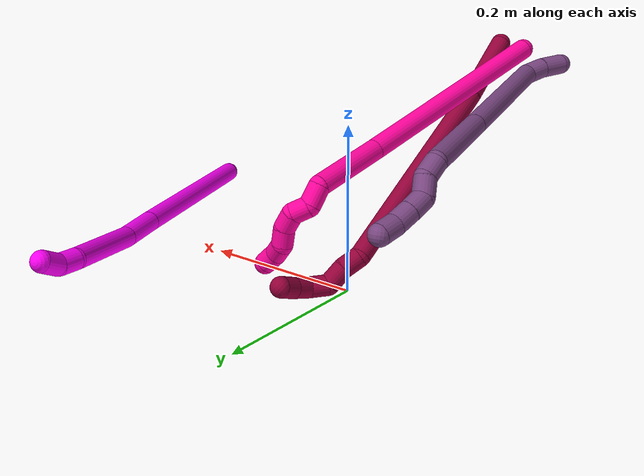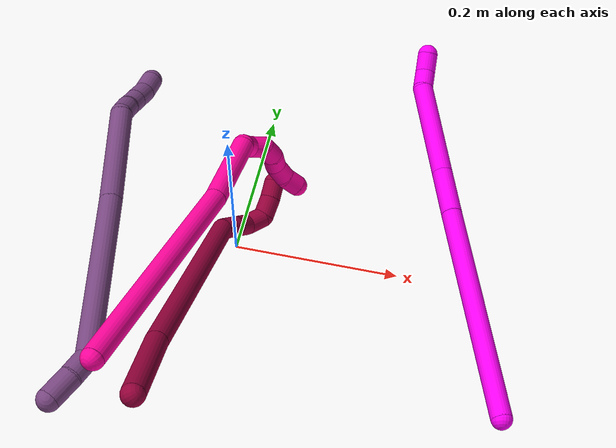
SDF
<sdf version="1.7">
 <world name="default">
  <model name="8">
   <static>0</static>
   <link name="8">
    <collision name="collision-cylinder-e_1_1_4">
     <pose>0.013442 0.047788 -0.010038 -1.77784 0.268617 -0.329884</pose>
     <geometry><cylinder><radius>0.0125</radius><length>0.101295</length></cylinder></geometry>
     <surface>
      <friction><ode><mu>1.16</mu><mu2>1.16</mu2><slip1>0</slip1><slip2>0</slip2></ode></friction>
      <contact><ode><kp>1e+06</kp><kd>1</kd><max_vel>0</max_vel><min_depth>0.001</min_depth></ode></contact>
     </surface>
    </collision>
    <visual name="visual-cylinder-e_1_1_4">
     <pose>0.013442 0.047788 -0.010038 -1.77784 0.268617 -0.329884</pose>
     <geometry><cylinder><radius>0.0125</radius><length>0.101295</length></cylinder></geometry>
     <material><ambient>0.584314 0 0.227451 1</ambient></material>
    </visual>
    <collision name="collision-cylinder-e_2_4_5">
     <pose>0.069556 0.227133 -0.039388 -1.71654 0.310544 -0.358484</pose>
     <geometry><cylinder><radius>0.0125</radius><length>0.279292</length></cylinder></geometry>
     <surface>
      <friction><ode><mu>1.16</mu><mu2>1.16</mu2><slip1>0</slip1><slip2>0</slip2></ode></friction>
      <contact><ode><kp>1e+06</kp><kd>1</kd><max_vel>0</max_vel><min_depth>0.001</min_depth></ode></contact>
     </surface>
    </collision>
    <visual name="visual-cylinder-e_2_4_5">
     <pose>0.069556 0.227133 -0.039388 -1.71654 0.310544 -0.358484</pose>
     <geometry><cylinder><radius>0.0125</radius><length>0.279292</length></cylinder></geometry>
     <material><ambient>0.584314 0 0.227451 1</ambient></material>
    </visual>
    <collision name="collision-cylinder-e_3_5_6">
     <pose>0.120481 0.366825 -0.056554 -1.31302 0.775728 -0.60997</pose>
     <geometry><cylinder><radius>0.0125</radius><length>0.023569</length></cylinder></geometry>
     <surface>
      <friction><ode><mu>1.16</mu><mu2>1.16</mu2><slip1>0</slip1><slip2>0</slip2></ode></friction>
      <contact><ode><kp>1e+06</kp><kd>1</kd><max_vel>0</max_vel><min_depth>0.001</min_depth></ode></contact>
     </surface>
    </collision>
    <visual name="visual-cylinder-e_3_5_6">
     <pose>0.120481 0.366825 -0.056554 -1.31302 0.775728 -0.60997</pose>
     <geometry><cylinder><radius>0.0125</radius><length>0.023569</length></cylinder></geometry>
     <material><ambient>0.584314 0 0.227451 1</ambient></material>
    </visual>
    <collision name="collision-cylinder-e_4_6_7">
     <pose>0.137385 0.384512 -0.054989 -1.63142 0.7351 -0.7767</pose>
     <geometry><cylinder><radius>0.0125</radius><length>0.025802</length></cylinder></geometry>
     <surface>
      <friction><ode><mu>1.16</mu><mu2>1.16</mu2><slip1>0</slip1><slip2>0</slip2></ode></friction>
      <contact><ode><kp>1e+06</kp><kd>1</kd><max_vel>0</max_vel><min_depth>0.001</min_depth></ode></contact>
     </surface>
    </collision>
    <visual name="visual-cylinder-e_4_6_7">
     <pose>0.137385 0.384512 -0.054989 -1.63142 0.7351 -0.7767</pose>
     <geometry><cylinder><radius>0.0125</radius><length>0.025802</length></cylinder></geometry>
     <material><ambient>0.584314 0 0.227451 1</ambient></material>
    </visual>
    <collision name="collision-cylinder-e_5_7_8">
     <pose>0.151414 0.401434 -0.048184 -0.784397 0.47585 -0.199956</pose>
     <geometry><cylinder><radius>0.0125</radius><length>0.023473</length></cylinder></geometry>
     <surface>
      <friction><ode><mu>1.16</mu><mu2>1.16</mu2><slip1>0</slip1><slip2>0</slip2></ode></friction>
      <contact><ode><kp>1e+06</kp><kd>1</kd><max_vel>0</max_vel><min_depth>0.001</min_depth></ode></contact>
     </surface>
    </collision>
    <visual name="visual-cylinder-e_5_7_8">
     <pose>0.151414 0.401434 -0.048184 -0.784397 0.47585 -0.199956</pose>
     <geometry><cylinder><radius>0.0125</radius><length>0.023473</length></cylinder></geometry>
     <material><ambient>0.584314 0 0.227451 1</ambient></material>
    </visual>
    <collision name="collision-cylinder-e_6_8_9">
     <pose>0.154438 0.419457 -0.034804 -1.05816 -0.190067 0.11135</pose>
     <geometry><cylinder><radius>0.0125</radius><length>0.024898</length></cylinder></geometry>
     <surface>
      <friction><ode><mu>1.16</mu><mu2>1.16</mu2><slip1>0</slip1><slip2>0</slip2></ode></friction>
      <contact><ode><kp>1e+06</kp><kd>1</kd><max_vel>0</max_vel><min_depth>0.001</min_depth></ode></contact>
     </surface>
    </collision>
    <visual name="visual-cylinder-e_6_8_9">
     <pose>0.154438 0.419457 -0.034804 -1.05816 -0.190067 0.11135</pose>
     <geometry><cylinder><radius>0.0125</radius><length>0.024898</length></cylinder></geometry>
     <material><ambient>0.584314 0 0.227451 1</ambient></material>
    </visual>
    <collision name="collision-cylinder-e_7_9_2">
     <pose>0.148711 0.439074 -0.023743 -1.05651 -0.316756 0.185876</pose>
     <geometry><cylinder><radius>0.0125</radius><length>0.021671</length></cylinder></geometry>
     <surface>
      <friction><ode><mu>1.16</mu><mu2>1.16</mu2><slip1>0</slip1><slip2>0</slip2></ode></friction>
      <contact><ode><kp>1e+06</kp><kd>1</kd><max_vel>0</max_vel><min_depth>0.001</min_depth></ode></contact>
     </surface>
    </collision>
    <visual name="visual-cylinder-e_7_9_2">
     <pose>0.148711 0.439074 -0.023743 -1.05651 -0.316756 0.185876</pose>
     <geometry><cylinder><radius>0.0125</radius><length>0.021671</length></cylinder></geometry>
     <material><ambient>0.584314 0 0.227451 1</ambient></material>
    </visual>
    <collision name="collision-sphere-2">
     <pose>0.145336 0.448039 -0.018678 0 -0 0</pose>
     <geometry><sphere><radius>0.0125</radius></sphere></geometry>
     <surface>
      <friction><ode><mu>1.16</mu><mu2>1.16</mu2><slip1>0</slip1><slip2>0</slip2></ode></friction>
      <contact><ode><kp>1e+06</kp><kd>1</kd><max_vel>0</max_vel><min_depth>0.001</min_depth></ode></contact>
     </surface>
    </collision>
    <visual name="visual-sphere-2">
     <pose>0.145336 0.448039 -0.018678 0 -0 0</pose>
     <geometry><sphere><radius>0.0125</radius></sphere></geometry>
     <material><ambient>0.584314 0 0.227451 1</ambient></material>
    </visual>
    <collision name="collision-sphere-9">
     <pose>0.152086 0.43011 -0.028808 0 -0 0</pose>
     <geometry><sphere><radius>0.0125</radius></sphere></geometry>
     <surface>
      <friction><ode><mu>1.16</mu><mu2>1.16</mu2><slip1>0</slip1><slip2>0</slip2></ode></friction>
      <contact><ode><kp>1e+06</kp><kd>1</kd><max_vel>0</max_vel><min_depth>0.001</min_depth></ode></contact>
     </surface>
    </collision>
    <visual name="visual-sphere-9">
     <pose>0.152086 0.43011 -0.028808 0 -0 0</pose>
     <geometry><sphere><radius>0.0125</radius></sphere></geometry>
     <material><ambient>0.584314 0 0.227451 1</ambient></material>
    </visual>
    <collision name="collision-sphere-4">
     <pose>0.026883 0.095577 -0.020077 0 -0 0</pose>
     <geometry><sphere><radius>0.0125</radius></sphere></geometry>
     <surface>
      <friction><ode><mu>1.16</mu><mu2>1.16</mu2><slip1>0</slip1><slip2>0</slip2></ode></friction>
      <contact><ode><kp>1e+06</kp><kd>1</kd><max_vel>0</max_vel><min_depth>0.001</min_depth></ode></contact>
     </surface>
    </collision>
    <visual name="visual-sphere-4">
     <pose>0.026883 0.095577 -0.020077 0 -0 0</pose>
     <geometry><sphere><radius>0.0125</radius></sphere></geometry>
     <material><ambient>0.584314 0 0.227451 1</ambient></material>
    </visual>
    <collision name="collision-sphere-1">
     <geometry><sphere><radius>0.0125</radius></sphere></geometry>
     <surface>
      <friction><ode><mu>1.16</mu><mu2>1.16</mu2><slip1>0</slip1><slip2>0</slip2></ode></friction>
      <contact><ode><kp>1e+06</kp><kd>1</kd><max_vel>0</max_vel><min_depth>0.001</min_depth></ode></contact>
     </surface>
    </collision>
    <visual name="visual-sphere-1">
     <geometry><sphere><radius>0.0125</radius></sphere></geometry>
     <material><ambient>0.584314 0 0.227451 1</ambient></material>
    </visual>
    <collision name="collision-sphere-8">
     <pose>0.15679 0.408804 -0.0408 0 -0 0</pose>
     <geometry><sphere><radius>0.0125</radius></sphere></geometry>
     <surface>
      <friction><ode><mu>1.16</mu><mu2>1.16</mu2><slip1>0</slip1><slip2>0</slip2></ode></friction>
      <contact><ode><kp>1e+06</kp><kd>1</kd><max_vel>0</max_vel><min_depth>0.001</min_depth></ode></contact>
     </surface>
    </collision>
    <visual name="visual-sphere-8">
     <pose>0.15679 0.408804 -0.0408 0 -0 0</pose>
     <geometry><sphere><radius>0.0125</radius></sphere></geometry>
     <material><ambient>0.584314 0 0.227451 1</ambient></material>
    </visual>
    <collision name="collision-sphere-5">
     <pose>0.112229 0.35869 -0.058698 0 -0 0</pose>
     <geometry><sphere><radius>0.0125</radius></sphere></geometry>
     <surface>
      <friction><ode><mu>1.16</mu><mu2>1.16</mu2><slip1>0</slip1><slip2>0</slip2></ode></friction>
      <contact><ode><kp>1e+06</kp><kd>1</kd><max_vel>0</max_vel><min_depth>0.001</min_depth></ode></contact>
     </surface>
    </collision>
    <visual name="visual-sphere-5">
     <pose>0.112229 0.35869 -0.058698 0 -0 0</pose>
     <geometry><sphere><radius>0.0125</radius></sphere></geometry>
     <material><ambient>0.584314 0 0.227451 1</ambient></material>
    </visual>
    <collision name="collision-sphere-6">
     <pose>0.128733 0.37496 -0.054409 0 -0 0</pose>
     <geometry><sphere><radius>0.0125</radius></sphere></geometry>
     <surface>
      <friction><ode><mu>1.16</mu><mu2>1.16</mu2><slip1>0</slip1><slip2>0</slip2></ode></friction>
      <contact><ode><kp>1e+06</kp><kd>1</kd><max_vel>0</max_vel><min_depth>0.001</min_depth></ode></contact>
     </surface>
    </collision>
    <visual name="visual-sphere-6">
     <pose>0.128733 0.37496 -0.054409 0 -0 0</pose>
     <geometry><sphere><radius>0.0125</radius></sphere></geometry>
     <material><ambient>0.584314 0 0.227451 1</ambient></material>
    </visual>
    <collision name="collision-sphere-7">
     <pose>0.146037 0.394064 -0.055568 0 -0 0</pose>
     <geometry><sphere><radius>0.0125</radius></sphere></geometry>
     <surface>
      <friction><ode><mu>1.16</mu><mu2>1.16</mu2><slip1>0</slip1><slip2>0</slip2></ode></friction>
      <contact><ode><kp>1e+06</kp><kd>1</kd><max_vel>0</max_vel><min_depth>0.001</min_depth></ode></contact>
     </surface>
    </collision>
    <visual name="visual-sphere-7">
     <pose>0.146037 0.394064 -0.055568 0 -0 0</pose>
     <geometry><sphere><radius>0.0125</radius></sphere></geometry>
     <material><ambient>0.584314 0 0.227451 1</ambient></material>
    </visual>
    <inertial>
     <pose>0.075589 0.232451 -0.034563 0 -0 0</pose>
     <mass>0.5</mass>
     <inertia>
      <ixx>0.00109</ixx>
      <ixy>0</ixy>
      <ixz>0</ixz>
      <iyy>-0.000664</iyy>
      <iyz>0</iyz>
      <izz>-0.0024</izz>
     </inertia>
    </inertial>
   </link>
   <pose>-0.001215 -0.335023 0.23669 -0.30136 0.839419 -0.105852</pose>
  </model>
  <model name="10">
   <static>0</static>
   <link name="10">
    <collision name="collision-cylinder-e_1_1_4">
     <pose>0.008922 0.033724 0.128792 -0.256097 0.066914 -0.008619</pose>
     <geometry><cylinder><radius>0.0125</radius><length>0.266865</length></cylinder></geometry>
     <surface>
      <friction><ode><mu>1.16</mu><mu2>1.16</mu2><slip1>0</slip1><slip2>0</slip2></ode></friction>
      <contact><ode><kp>1e+06</kp><kd>1</kd><max_vel>0</max_vel><min_depth>0.001</min_depth></ode></contact>
     </surface>
    </collision>
    <visual name="visual-cylinder-e_1_1_4">
     <pose>0.008922 0.033724 0.128792 -0.256097 0.066914 -0.008619</pose>
     <geometry><cylinder><radius>0.0125</radius><length>0.266865</length></cylinder></geometry>
     <material><ambient>1 0 0.964706 1</ambient></material>
    </visual>
    <collision name="collision-cylinder-e_2_4_5">
     <pose>0.020992 0.075377 0.286814 -0.264921 0.103587 -0.013814</pose>
     <geometry><cylinder><radius>0.0125</radius><length>0.060899</length></cylinder></geometry>
     <surface>
      <friction><ode><mu>1.16</mu><mu2>1.16</mu2><slip1>0</slip1><slip2>0</slip2></ode></friction>
      <contact><ode><kp>1e+06</kp><kd>1</kd><max_vel>0</max_vel><min_depth>0.001</min_depth></ode></contact>
     </surface>
    </collision>
    <visual name="visual-cylinder-e_2_4_5">
     <pose>0.020992 0.075377 0.286814 -0.264921 0.103587 -0.013814</pose>
     <geometry><cylinder><radius>0.0125</radius><length>0.060899</length></cylinder></geometry>
     <material><ambient>1 0 0.964706 1</ambient></material>
    </visual>
    <collision name="collision-cylinder-e_3_5_6">
     <pose>0.023453 0.095409 0.376221 -0.198454 -0.011201 0.001115</pose>
     <geometry><cylinder><radius>0.0125</radius><length>0.122774</length></cylinder></geometry>
     <surface>
      <friction><ode><mu>1.16</mu><mu2>1.16</mu2><slip1>0</slip1><slip2>0</slip2></ode></friction>
      <contact><ode><kp>1e+06</kp><kd>1</kd><max_vel>0</max_vel><min_depth>0.001</min_depth></ode></contact>
     </surface>
    </collision>
    <visual name="visual-cylinder-e_3_5_6">
     <pose>0.023453 0.095409 0.376221 -0.198454 -0.011201 0.001115</pose>
     <geometry><cylinder><radius>0.0125</radius><length>0.122774</length></cylinder></geometry>
     <material><ambient>1 0 0.964706 1</ambient></material>
    </visual>
    <collision name="collision-cylinder-e_4_6_7">
     <pose>0.026162 0.107859 0.448126 -0.029689 0.281795 -0.004211</pose>
     <geometry><cylinder><radius>0.0125</radius><length>0.024426</length></cylinder></geometry>
     <surface>
      <friction><ode><mu>1.16</mu><mu2>1.16</mu2><slip1>0</slip1><slip2>0</slip2></ode></friction>
      <contact><ode><kp>1e+06</kp><kd>1</kd><max_vel>0</max_vel><min_depth>0.001</min_depth></ode></contact>
     </surface>
    </collision>
    <visual name="visual-cylinder-e_4_6_7">
     <pose>0.026162 0.107859 0.448126 -0.029689 0.281795 -0.004211</pose>
     <geometry><cylinder><radius>0.0125</radius><length>0.024426</length></cylinder></geometry>
     <material><ambient>1 0 0.964706 1</ambient></material>
    </visual>
    <collision name="collision-cylinder-e_5_7_2">
     <pose>0.028914 0.105219 0.471991 0.241394 -0.051477 -0.006245</pose>
     <geometry><cylinder><radius>0.0125</radius><length>0.025036</length></cylinder></geometry>
     <surface>
      <friction><ode><mu>1.16</mu><mu2>1.16</mu2><slip1>0</slip1><slip2>0</slip2></ode></friction>
      <contact><ode><kp>1e+06</kp><kd>1</kd><max_vel>0</max_vel><min_depth>0.001</min_depth></ode></contact>
     </surface>
    </collision>
    <visual name="visual-cylinder-e_5_7_2">
     <pose>0.028914 0.105219 0.471991 0.241394 -0.051477 -0.006245</pose>
     <geometry><cylinder><radius>0.0125</radius><length>0.025036</length></cylinder></geometry>
     <material><ambient>1 0 0.964706 1</ambient></material>
    </visual>
    <collision name="collision-sphere-2">
     <pose>0.02827 0.102231 0.48413 0 -0 0</pose>
     <geometry><sphere><radius>0.0125</radius></sphere></geometry>
     <surface>
      <friction><ode><mu>1.16</mu><mu2>1.16</mu2><slip1>0</slip1><slip2>0</slip2></ode></friction>
      <contact><ode><kp>1e+06</kp><kd>1</kd><max_vel>0</max_vel><min_depth>0.001</min_depth></ode></contact>
     </surface>
    </collision>
    <visual name="visual-sphere-2">
     <pose>0.02827 0.102231 0.48413 0 -0 0</pose>
     <geometry><sphere><radius>0.0125</radius></sphere></geometry>
     <material><ambient>1 0 0.964706 1</ambient></material>
    </visual>
    <collision name="collision-sphere-7">
     <pose>0.029558 0.108208 0.459852 0 -0 0</pose>
     <geometry><sphere><radius>0.0125</radius></sphere></geometry>
     <surface>
      <friction><ode><mu>1.16</mu><mu2>1.16</mu2><slip1>0</slip1><slip2>0</slip2></ode></friction>
      <contact><ode><kp>1e+06</kp><kd>1</kd><max_vel>0</max_vel><min_depth>0.001</min_depth></ode></contact>
     </surface>
    </collision>
    <visual name="visual-sphere-7">
     <pose>0.029558 0.108208 0.459852 0 -0 0</pose>
     <geometry><sphere><radius>0.0125</radius></sphere></geometry>
     <material><ambient>1 0 0.964706 1</ambient></material>
    </visual>
    <collision name="collision-sphere-6">
     <pose>0.022766 0.107511 0.4364 0 -0 0</pose>
     <geometry><sphere><radius>0.0125</radius></sphere></geometry>
     <surface>
      <friction><ode><mu>1.16</mu><mu2>1.16</mu2><slip1>0</slip1><slip2>0</slip2></ode></friction>
      <contact><ode><kp>1e+06</kp><kd>1</kd><max_vel>0</max_vel><min_depth>0.001</min_depth></ode></contact>
     </surface>
    </collision>
    <visual name="visual-sphere-6">
     <pose>0.022766 0.107511 0.4364 0 -0 0</pose>
     <geometry><sphere><radius>0.0125</radius></sphere></geometry>
     <material><ambient>1 0 0.964706 1</ambient></material>
    </visual>
    <collision name="collision-sphere-5">
     <pose>0.024141 0.083307 0.316043 0 -0 0</pose>
     <geometry><sphere><radius>0.0125</radius></sphere></geometry>
     <surface>
      <friction><ode><mu>1.16</mu><mu2>1.16</mu2><slip1>0</slip1><slip2>0</slip2></ode></friction>
      <contact><ode><kp>1e+06</kp><kd>1</kd><max_vel>0</max_vel><min_depth>0.001</min_depth></ode></contact>
     </surface>
    </collision>
    <visual name="visual-sphere-5">
     <pose>0.024141 0.083307 0.316043 0 -0 0</pose>
     <geometry><sphere><radius>0.0125</radius></sphere></geometry>
     <material><ambient>1 0 0.964706 1</ambient></material>
    </visual>
    <collision name="collision-sphere-1">
     <geometry><sphere><radius>0.0125</radius></sphere></geometry>
     <surface>
      <friction><ode><mu>1.16</mu><mu2>1.16</mu2><slip1>0</slip1><slip2>0</slip2></ode></friction>
      <contact><ode><kp>1e+06</kp><kd>1</kd><max_vel>0</max_vel><min_depth>0.001</min_depth></ode></contact>
     </surface>
    </collision>
    <visual name="visual-sphere-1">
     <geometry><sphere><radius>0.0125</radius></sphere></geometry>
     <material><ambient>1 0 0.964706 1</ambient></material>
    </visual>
    <collision name="collision-sphere-4">
     <pose>0.017844 0.067447 0.257584 0 -0 0</pose>
     <geometry><sphere><radius>0.0125</radius></sphere></geometry>
     <surface>
      <friction><ode><mu>1.16</mu><mu2>1.16</mu2><slip1>0</slip1><slip2>0</slip2></ode></friction>
      <contact><ode><kp>1e+06</kp><kd>1</kd><max_vel>0</max_vel><min_depth>0.001</min_depth></ode></contact>
     </surface>
    </collision>
    <visual name="visual-sphere-4">
     <pose>0.017844 0.067447 0.257584 0 -0 0</pose>
     <geometry><sphere><radius>0.0125</radius></sphere></geometry>
     <material><ambient>1 0 0.964706 1</ambient></material>
    </visual>
    <inertial>
     <pose>0.015803 0.061145 0.241579 0 -0 0</pose>
     <mass>0.5</mass>
     <inertia>
      <ixx>0.001763</ixx>
      <ixy>0</ixy>
      <ixz>0</ixz>
      <iyy>0.001717</iyy>
      <iyz>0</iyz>
      <izz>-0.000509</izz>
     </inertia>
    </inertial>
   </link>
   <pose>0.347645 -0.178002 0.028558 -1.1289 0.826154 0.548828</pose>
  </model>
  <model name="18">
   <static>0</static>
   <link name="18">
    <collision name="collision-cylinder-e_1_1_4">
     <pose>-0.02318 -0.007745 -0.136136 3.08477 -0.168383 -2.4919</pose>
     <geometry><cylinder><radius>0.0125</radius><length>0.276624</length></cylinder></geometry>
     <surface>
      <friction><ode><mu>1.16</mu><mu2>1.16</mu2><slip1>0</slip1><slip2>0</slip2></ode></friction>
      <contact><ode><kp>1e+06</kp><kd>1</kd><max_vel>0</max_vel><min_depth>0.001</min_depth></ode></contact>
     </surface>
    </collision>
    <visual name="visual-cylinder-e_1_1_4">
     <pose>-0.02318 -0.007745 -0.136136 3.08477 -0.168383 -2.4919</pose>
     <geometry><cylinder><radius>0.0125</radius><length>0.276624</length></cylinder></geometry>
     <material><ambient>1 0.007843 0.615686 1</ambient></material>
    </visual>
    <collision name="collision-cylinder-e_2_4_5">
     <pose>-0.058614 -0.013743 -0.318927 -3.10418 -0.256709 2.85369</pose>
     <geometry><cylinder><radius>0.0125</radius><length>0.096538</length></cylinder></geometry>
     <surface>
      <friction><ode><mu>1.16</mu><mu2>1.16</mu2><slip1>0</slip1><slip2>0</slip2></ode></friction>
      <contact><ode><kp>1e+06</kp><kd>1</kd><max_vel>0</max_vel><min_depth>0.001</min_depth></ode></contact>
     </surface>
    </collision>
    <visual name="visual-cylinder-e_2_4_5">
     <pose>-0.058614 -0.013743 -0.318927 -3.10418 -0.256709 2.85369</pose>
     <geometry><cylinder><radius>0.0125</radius><length>0.096538</length></cylinder></geometry>
     <material><ambient>1 0.007843 0.615686 1</ambient></material>
    </visual>
    <collision name="collision-cylinder-e_3_5_6">
     <pose>-0.073063 -0.020143 -0.374842 2.42013 -0.175998 -0.45949</pose>
     <geometry><cylinder><radius>0.0125</radius><length>0.025055</length></cylinder></geometry>
     <surface>
      <friction><ode><mu>1.16</mu><mu2>1.16</mu2><slip1>0</slip1><slip2>0</slip2></ode></friction>
      <contact><ode><kp>1e+06</kp><kd>1</kd><max_vel>0</max_vel><min_depth>0.001</min_depth></ode></contact>
     </surface>
    </collision>
    <visual name="visual-cylinder-e_3_5_6">
     <pose>-0.073063 -0.020143 -0.374842 2.42013 -0.175998 -0.45949</pose>
     <geometry><cylinder><radius>0.0125</radius><length>0.025055</length></cylinder></geometry>
     <material><ambient>1 0.007843 0.615686 1</ambient></material>
    </visual>
    <collision name="collision-cylinder-e_4_6_7">
     <pose>-0.070238 -0.031792 -0.392368 2.74074 0.509781 1.81712</pose>
     <geometry><cylinder><radius>0.0125</radius><length>0.020568</length></cylinder></geometry>
     <surface>
      <friction><ode><mu>1.16</mu><mu2>1.16</mu2><slip1>0</slip1><slip2>0</slip2></ode></friction>
      <contact><ode><kp>1e+06</kp><kd>1</kd><max_vel>0</max_vel><min_depth>0.001</min_depth></ode></contact>
     </surface>
    </collision>
    <visual name="visual-cylinder-e_4_6_7">
     <pose>-0.070238 -0.031792 -0.392368 2.74074 0.509781 1.81712</pose>
     <geometry><cylinder><radius>0.0125</radius><length>0.020568</length></cylinder></geometry>
     <material><ambient>1 0.007843 0.615686 1</ambient></material>
    </visual>
    <collision name="collision-cylinder-e_5_7_8">
     <pose>-0.062224 -0.044028 -0.40536 2.06695 0.292971 0.48551</pose>
     <geometry><cylinder><radius>0.0125</radius><length>0.020746</length></cylinder></geometry>
     <surface>
      <friction><ode><mu>1.16</mu><mu2>1.16</mu2><slip1>0</slip1><slip2>0</slip2></ode></friction>
      <contact><ode><kp>1e+06</kp><kd>1</kd><max_vel>0</max_vel><min_depth>0.001</min_depth></ode></contact>
     </surface>
    </collision>
    <visual name="visual-cylinder-e_5_7_8">
     <pose>-0.062224 -0.044028 -0.40536 2.06695 0.292971 0.48551</pose>
     <geometry><cylinder><radius>0.0125</radius><length>0.020746</length></cylinder></geometry>
     <material><ambient>1 0.007843 0.615686 1</ambient></material>
    </visual>
    <collision name="collision-cylinder-e_6_8_9">
     <pose>-0.05935 -0.062534 -0.41308 1.86799 -0.011865 -0.016043</pose>
     <geometry><cylinder><radius>0.0125</radius><length>0.020442</length></cylinder></geometry>
     <surface>
      <friction><ode><mu>1.16</mu><mu2>1.16</mu2><slip1>0</slip1><slip2>0</slip2></ode></friction>
      <contact><ode><kp>1e+06</kp><kd>1</kd><max_vel>0</max_vel><min_depth>0.001</min_depth></ode></contact>
     </surface>
    </collision>
    <visual name="visual-cylinder-e_6_8_9">
     <pose>-0.05935 -0.062534 -0.41308 1.86799 -0.011865 -0.016043</pose>
     <geometry><cylinder><radius>0.0125</radius><length>0.020442</length></cylinder></geometry>
     <material><ambient>1 0.007843 0.615686 1</ambient></material>
    </visual>
    <collision name="collision-cylinder-e_7_9_10">
     <pose>-0.054032 -0.08046 -0.4181 1.81439 0.574501 0.722499</pose>
     <geometry><cylinder><radius>0.0125</radius><length>0.020018</length></cylinder></geometry>
     <surface>
      <friction><ode><mu>1.16</mu><mu2>1.16</mu2><slip1>0</slip1><slip2>0</slip2></ode></friction>
      <contact><ode><kp>1e+06</kp><kd>1</kd><max_vel>0</max_vel><min_depth>0.001</min_depth></ode></contact>
     </surface>
    </collision>
    <visual name="visual-cylinder-e_7_9_10">
     <pose>-0.054032 -0.08046 -0.4181 1.81439 0.574501 0.722499</pose>
     <geometry><cylinder><radius>0.0125</radius><length>0.020018</length></cylinder></geometry>
     <material><ambient>1 0.007843 0.615686 1</ambient></material>
    </visual>
    <collision name="collision-cylinder-e_8_10_2">
     <pose>-0.043234 -0.095638 -0.424821 2.15997 0.565248 0.995485</pose>
     <geometry><cylinder><radius>0.0125</radius><length>0.020009</length></cylinder></geometry>
     <surface>
      <friction><ode><mu>1.16</mu><mu2>1.16</mu2><slip1>0</slip1><slip2>0</slip2></ode></friction>
      <contact><ode><kp>1e+06</kp><kd>1</kd><max_vel>0</max_vel><min_depth>0.001</min_depth></ode></contact>
     </surface>
    </collision>
    <visual name="visual-cylinder-e_8_10_2">
     <pose>-0.043234 -0.095638 -0.424821 2.15997 0.565248 0.995485</pose>
     <geometry><cylinder><radius>0.0125</radius><length>0.020009</length></cylinder></geometry>
     <material><ambient>1 0.007843 0.615686 1</ambient></material>
    </visual>
    <collision name="collision-sphere-2">
     <pose>-0.037876 -0.102662 -0.429515 0 -0 0</pose>
     <geometry><sphere><radius>0.0125</radius></sphere></geometry>
     <surface>
      <friction><ode><mu>1.16</mu><mu2>1.16</mu2><slip1>0</slip1><slip2>0</slip2></ode></friction>
      <contact><ode><kp>1e+06</kp><kd>1</kd><max_vel>0</max_vel><min_depth>0.001</min_depth></ode></contact>
     </surface>
    </collision>
    <visual name="visual-sphere-2">
     <pose>-0.037876 -0.102662 -0.429515 0 -0 0</pose>
     <geometry><sphere><radius>0.0125</radius></sphere></geometry>
     <material><ambient>1 0.007843 0.615686 1</ambient></material>
    </visual>
    <collision name="collision-sphere-10">
     <pose>-0.048593 -0.088614 -0.420126 0 -0 0</pose>
     <geometry><sphere><radius>0.0125</radius></sphere></geometry>
     <surface>
      <friction><ode><mu>1.16</mu><mu2>1.16</mu2><slip1>0</slip1><slip2>0</slip2></ode></friction>
      <contact><ode><kp>1e+06</kp><kd>1</kd><max_vel>0</max_vel><min_depth>0.001</min_depth></ode></contact>
     </surface>
    </collision>
    <visual name="visual-sphere-10">
     <pose>-0.048593 -0.088614 -0.420126 0 -0 0</pose>
     <geometry><sphere><radius>0.0125</radius></sphere></geometry>
     <material><ambient>1 0.007843 0.615686 1</ambient></material>
    </visual>
    <collision name="collision-sphere-9">
     <pose>-0.059471 -0.072306 -0.416073 0 -0 0</pose>
     <geometry><sphere><radius>0.0125</radius></sphere></geometry>
     <surface>
      <friction><ode><mu>1.16</mu><mu2>1.16</mu2><slip1>0</slip1><slip2>0</slip2></ode></friction>
      <contact><ode><kp>1e+06</kp><kd>1</kd><max_vel>0</max_vel><min_depth>0.001</min_depth></ode></contact>
     </surface>
    </collision>
    <visual name="visual-sphere-9">
     <pose>-0.059471 -0.072306 -0.416073 0 -0 0</pose>
     <geometry><sphere><radius>0.0125</radius></sphere></geometry>
     <material><ambient>1 0.007843 0.615686 1</ambient></material>
    </visual>
    <collision name="collision-sphere-4">
     <pose>-0.046359 -0.015489 -0.272272 0 -0 0</pose>
     <geometry><sphere><radius>0.0125</radius></sphere></geometry>
     <surface>
      <friction><ode><mu>1.16</mu><mu2>1.16</mu2><slip1>0</slip1><slip2>0</slip2></ode></friction>
      <contact><ode><kp>1e+06</kp><kd>1</kd><max_vel>0</max_vel><min_depth>0.001</min_depth></ode></contact>
     </surface>
    </collision>
    <visual name="visual-sphere-4">
     <pose>-0.046359 -0.015489 -0.272272 0 -0 0</pose>
     <geometry><sphere><radius>0.0125</radius></sphere></geometry>
     <material><ambient>1 0.007843 0.615686 1</ambient></material>
    </visual>
    <collision name="collision-sphere-1">
     <geometry><sphere><radius>0.0125</radius></sphere></geometry>
     <surface>
      <friction><ode><mu>1.16</mu><mu2>1.16</mu2><slip1>0</slip1><slip2>0</slip2></ode></friction>
      <contact><ode><kp>1e+06</kp><kd>1</kd><max_vel>0</max_vel><min_depth>0.001</min_depth></ode></contact>
     </surface>
    </collision>
    <visual name="visual-sphere-1">
     <geometry><sphere><radius>0.0125</radius></sphere></geometry>
     <material><ambient>1 0.007843 0.615686 1</ambient></material>
    </visual>
    <collision name="collision-sphere-8">
     <pose>-0.059229 -0.052762 -0.410088 0 -0 0</pose>
     <geometry><sphere><radius>0.0125</radius></sphere></geometry>
     <surface>
      <friction><ode><mu>1.16</mu><mu2>1.16</mu2><slip1>0</slip1><slip2>0</slip2></ode></friction>
      <contact><ode><kp>1e+06</kp><kd>1</kd><max_vel>0</max_vel><min_depth>0.001</min_depth></ode></contact>
     </surface>
    </collision>
    <visual name="visual-sphere-8">
     <pose>-0.059229 -0.052762 -0.410088 0 -0 0</pose>
     <geometry><sphere><radius>0.0125</radius></sphere></geometry>
     <material><ambient>1 0.007843 0.615686 1</ambient></material>
    </visual>
    <collision name="collision-sphere-5">
     <pose>-0.07087 -0.011996 -0.365581 0 -0 0</pose>
     <geometry><sphere><radius>0.0125</radius></sphere></geometry>
     <surface>
      <friction><ode><mu>1.16</mu><mu2>1.16</mu2><slip1>0</slip1><slip2>0</slip2></ode></friction>
      <contact><ode><kp>1e+06</kp><kd>1</kd><max_vel>0</max_vel><min_depth>0.001</min_depth></ode></contact>
     </surface>
    </collision>
    <visual name="visual-sphere-5">
     <pose>-0.07087 -0.011996 -0.365581 0 -0 0</pose>
     <geometry><sphere><radius>0.0125</radius></sphere></geometry>
     <material><ambient>1 0.007843 0.615686 1</ambient></material>
    </visual>
    <collision name="collision-sphere-6">
     <pose>-0.075257 -0.02829 -0.384103 0 -0 0</pose>
     <geometry><sphere><radius>0.0125</radius></sphere></geometry>
     <surface>
      <friction><ode><mu>1.16</mu><mu2>1.16</mu2><slip1>0</slip1><slip2>0</slip2></ode></friction>
      <contact><ode><kp>1e+06</kp><kd>1</kd><max_vel>0</max_vel><min_depth>0.001</min_depth></ode></contact>
     </surface>
    </collision>
    <visual name="visual-sphere-6">
     <pose>-0.075257 -0.02829 -0.384103 0 -0 0</pose>
     <geometry><sphere><radius>0.0125</radius></sphere></geometry>
     <material><ambient>1 0.007843 0.615686 1</ambient></material>
    </visual>
    <collision name="collision-sphere-7">
     <pose>-0.06522 -0.035295 -0.400632 0 -0 0</pose>
     <geometry><sphere><radius>0.0125</radius></sphere></geometry>
     <surface>
      <friction><ode><mu>1.16</mu><mu2>1.16</mu2><slip1>0</slip1><slip2>0</slip2></ode></friction>
      <contact><ode><kp>1e+06</kp><kd>1</kd><max_vel>0</max_vel><min_depth>0.001</min_depth></ode></contact>
     </surface>
    </collision>
    <visual name="visual-sphere-7">
     <pose>-0.06522 -0.035295 -0.400632 0 -0 0</pose>
     <geometry><sphere><radius>0.0125</radius></sphere></geometry>
     <material><ambient>1 0.007843 0.615686 1</ambient></material>
    </visual>
    <inertial>
     <pose>-0.039593 -0.020687 -0.239265 0 -0 0</pose>
     <mass>0.5</mass>
     <inertia>
      <ixx>-0.002497</ixx>
      <ixy>0</ixy>
      <ixz>0</ixz>
      <iyy>0.000453</iyy>
      <iyz>0</iyz>
      <izz>0.000385</izz>
     </inertia>
    </inertial>
   </link>
   <pose>-0.048639 -0.307684 0.239744 1.35638 -0.126336 -0.310083</pose>
  </model>
  <model name="20">
   <static>0</static>
   <link name="20">
    <collision name="collision-cylinder-e_1_1_4">
     <pose>0.006357 0.013382 -0.004912 -1.9226 0.419438 -0.591832</pose>
     <geometry><cylinder><radius>0.0125</radius><length>0.031217</length></cylinder></geometry>
     <surface>
      <friction><ode><mu>1.16</mu><mu2>1.16</mu2><slip1>0</slip1><slip2>0</slip2></ode></friction>
      <contact><ode><kp>1e+06</kp><kd>1</kd><max_vel>0</max_vel><min_depth>0.001</min_depth></ode></contact>
     </surface>
    </collision>
    <visual name="visual-cylinder-e_1_1_4">
     <pose>0.006357 0.013382 -0.004912 -1.9226 0.419438 -0.591832</pose>
     <geometry><cylinder><radius>0.0125</radius><length>0.031217</length></cylinder></geometry>
     <material><ambient>0.478431 0.278431 0.509804 1</ambient></material>
    </visual>
    <collision name="collision-cylinder-e_2_4_5">
     <pose>0.016839 0.037946 -0.015618 -2.04882 0.316629 -0.513455</pose>
     <geometry><cylinder><radius>0.0125</radius><length>0.026503</length></cylinder></geometry>
     <surface>
      <friction><ode><mu>1.16</mu><mu2>1.16</mu2><slip1>0</slip1><slip2>0</slip2></ode></friction>
      <contact><ode><kp>1e+06</kp><kd>1</kd><max_vel>0</max_vel><min_depth>0.001</min_depth></ode></contact>
     </surface>
    </collision>
    <visual name="visual-cylinder-e_2_4_5">
     <pose>0.016839 0.037946 -0.015618 -2.04882 0.316629 -0.513455</pose>
     <geometry><cylinder><radius>0.0125</radius><length>0.026503</length></cylinder></geometry>
     <material><ambient>0.478431 0.278431 0.509804 1</ambient></material>
    </visual>
    <collision name="collision-cylinder-e_3_5_6">
     <pose>0.003051 0.140186 -0.059559 -1.96752 -0.179494 0.268901</pose>
     <geometry><cylinder><radius>0.0125</radius><length>0.200678</length></cylinder></geometry>
     <surface>
      <friction><ode><mu>1.16</mu><mu2>1.16</mu2><slip1>0</slip1><slip2>0</slip2></ode></friction>
      <contact><ode><kp>1e+06</kp><kd>1</kd><max_vel>0</max_vel><min_depth>0.001</min_depth></ode></contact>
     </surface>
    </collision>
    <visual name="visual-cylinder-e_3_5_6">
     <pose>0.003051 0.140186 -0.059559 -1.96752 -0.179494 0.268901</pose>
     <geometry><cylinder><radius>0.0125</radius><length>0.200678</length></cylinder></geometry>
     <material><ambient>0.478431 0.278431 0.509804 1</ambient></material>
    </visual>
    <collision name="collision-cylinder-e_4_6_7">
     <pose>-0.027228 0.289271 -0.120165 -1.94007 -0.196182 0.285262</pose>
     <geometry><cylinder><radius>0.0125</radius><length>0.126876</length></cylinder></geometry>
     <surface>
      <friction><ode><mu>1.16</mu><mu2>1.16</mu2><slip1>0</slip1><slip2>0</slip2></ode></friction>
      <contact><ode><kp>1e+06</kp><kd>1</kd><max_vel>0</max_vel><min_depth>0.001</min_depth></ode></contact>
     </surface>
    </collision>
    <visual name="visual-cylinder-e_4_6_7">
     <pose>-0.027228 0.289271 -0.120165 -1.94007 -0.196182 0.285262</pose>
     <geometry><cylinder><radius>0.0125</radius><length>0.126876</length></cylinder></geometry>
     <material><ambient>0.478431 0.278431 0.509804 1</ambient></material>
    </visual>
    <collision name="collision-cylinder-e_5_7_8">
     <pose>-0.039424 0.355411 -0.15126 -2.38747 0.014303 -0.036114</pose>
     <geometry><cylinder><radius>0.0125</radius><length>0.023702</length></cylinder></geometry>
     <surface>
      <friction><ode><mu>1.16</mu><mu2>1.16</mu2><slip1>0</slip1><slip2>0</slip2></ode></friction>
      <contact><ode><kp>1e+06</kp><kd>1</kd><max_vel>0</max_vel><min_depth>0.001</min_depth></ode></contact>
     </surface>
    </collision>
    <visual name="visual-cylinder-e_5_7_8">
     <pose>-0.039424 0.355411 -0.15126 -2.38747 0.014303 -0.036114</pose>
     <geometry><cylinder><radius>0.0125</radius><length>0.023702</length></cylinder></geometry>
     <material><ambient>0.478431 0.278431 0.509804 1</ambient></material>
    </visual>
    <collision name="collision-cylinder-e_6_8_9">
     <pose>-0.041853 0.366931 -0.17017 -2.82132 -0.235584 1.26464</pose>
     <geometry><cylinder><radius>0.0125</radius><length>0.022262</length></cylinder></geometry>
     <surface>
      <friction><ode><mu>1.16</mu><mu2>1.16</mu2><slip1>0</slip1><slip2>0</slip2></ode></friction>
      <contact><ode><kp>1e+06</kp><kd>1</kd><max_vel>0</max_vel><min_depth>0.001</min_depth></ode></contact>
     </surface>
    </collision>
    <visual name="visual-cylinder-e_6_8_9">
     <pose>-0.041853 0.366931 -0.17017 -2.82132 -0.235584 1.26464</pose>
     <geometry><cylinder><radius>0.0125</radius><length>0.022262</length></cylinder></geometry>
     <material><ambient>0.478431 0.278431 0.509804 1</ambient></material>
    </visual>
    <collision name="collision-cylinder-e_7_9_10">
     <pose>-0.042759 0.378821 -0.187725 -2.28019 0.150201 -0.324633</pose>
     <geometry><cylinder><radius>0.0125</radius><length>0.022614</length></cylinder></geometry>
     <surface>
      <friction><ode><mu>1.16</mu><mu2>1.16</mu2><slip1>0</slip1><slip2>0</slip2></ode></friction>
      <contact><ode><kp>1e+06</kp><kd>1</kd><max_vel>0</max_vel><min_depth>0.001</min_depth></ode></contact>
     </surface>
    </collision>
    <visual name="visual-cylinder-e_7_9_10">
     <pose>-0.042759 0.378821 -0.187725 -2.28019 0.150201 -0.324633</pose>
     <geometry><cylinder><radius>0.0125</radius><length>0.022614</length></cylinder></geometry>
     <material><ambient>0.478431 0.278431 0.509804 1</ambient></material>
    </visual>
    <collision name="collision-cylinder-e_8_10_11">
     <pose>-0.038981 0.395799 -0.20219 -2.27268 0.185404 -0.395465</pose>
     <geometry><cylinder><radius>0.0125</radius><length>0.022637</length></cylinder></geometry>
     <surface>
      <friction><ode><mu>1.16</mu><mu2>1.16</mu2><slip1>0</slip1><slip2>0</slip2></ode></friction>
      <contact><ode><kp>1e+06</kp><kd>1</kd><max_vel>0</max_vel><min_depth>0.001</min_depth></ode></contact>
     </surface>
    </collision>
    <visual name="visual-cylinder-e_8_10_11">
     <pose>-0.038981 0.395799 -0.20219 -2.27268 0.185404 -0.395465</pose>
     <geometry><cylinder><radius>0.0125</radius><length>0.022637</length></cylinder></geometry>
     <material><ambient>0.478431 0.278431 0.509804 1</ambient></material>
    </visual>
    <collision name="collision-cylinder-e_9_11_2">
     <pose>-0.035518 0.414669 -0.214726 -2.04716 0.117325 -0.192189</pose>
     <geometry><cylinder><radius>0.0125</radius><length>0.023512</length></cylinder></geometry>
     <surface>
      <friction><ode><mu>1.16</mu><mu2>1.16</mu2><slip1>0</slip1><slip2>0</slip2></ode></friction>
      <contact><ode><kp>1e+06</kp><kd>1</kd><max_vel>0</max_vel><min_depth>0.001</min_depth></ode></contact>
     </surface>
    </collision>
    <visual name="visual-cylinder-e_9_11_2">
     <pose>-0.035518 0.414669 -0.214726 -2.04716 0.117325 -0.192189</pose>
     <geometry><cylinder><radius>0.0125</radius><length>0.023512</length></cylinder></geometry>
     <material><ambient>0.478431 0.278431 0.509804 1</ambient></material>
    </visual>
    <collision name="collision-sphere-2">
     <pose>-0.034142 0.425045 -0.22008 0 -0 0</pose>
     <geometry><sphere><radius>0.0125</radius></sphere></geometry>
     <surface>
      <friction><ode><mu>1.16</mu><mu2>1.16</mu2><slip1>0</slip1><slip2>0</slip2></ode></friction>
      <contact><ode><kp>1e+06</kp><kd>1</kd><max_vel>0</max_vel><min_depth>0.001</min_depth></ode></contact>
     </surface>
    </collision>
    <visual name="visual-sphere-2">
     <pose>-0.034142 0.425045 -0.22008 0 -0 0</pose>
     <geometry><sphere><radius>0.0125</radius></sphere></geometry>
     <material><ambient>0.478431 0.278431 0.509804 1</ambient></material>
    </visual>
    <collision name="collision-sphere-11">
     <pose>-0.036894 0.404294 -0.209372 0 -0 0</pose>
     <geometry><sphere><radius>0.0125</radius></sphere></geometry>
     <surface>
      <friction><ode><mu>1.16</mu><mu2>1.16</mu2><slip1>0</slip1><slip2>0</slip2></ode></friction>
      <contact><ode><kp>1e+06</kp><kd>1</kd><max_vel>0</max_vel><min_depth>0.001</min_depth></ode></contact>
     </surface>
    </collision>
    <visual name="visual-sphere-11">
     <pose>-0.036894 0.404294 -0.209372 0 -0 0</pose>
     <geometry><sphere><radius>0.0125</radius></sphere></geometry>
     <material><ambient>0.478431 0.278431 0.509804 1</ambient></material>
    </visual>
    <collision name="collision-sphere-10">
     <pose>-0.041067 0.387304 -0.195007 0 -0 0</pose>
     <geometry><sphere><radius>0.0125</radius></sphere></geometry>
     <surface>
      <friction><ode><mu>1.16</mu><mu2>1.16</mu2><slip1>0</slip1><slip2>0</slip2></ode></friction>
      <contact><ode><kp>1e+06</kp><kd>1</kd><max_vel>0</max_vel><min_depth>0.001</min_depth></ode></contact>
     </surface>
    </collision>
    <visual name="visual-sphere-10">
     <pose>-0.041067 0.387304 -0.195007 0 -0 0</pose>
     <geometry><sphere><radius>0.0125</radius></sphere></geometry>
     <material><ambient>0.478431 0.278431 0.509804 1</ambient></material>
    </visual>
    <collision name="collision-sphere-9">
     <pose>-0.044451 0.370339 -0.180443 0 -0 0</pose>
     <geometry><sphere><radius>0.0125</radius></sphere></geometry>
     <surface>
      <friction><ode><mu>1.16</mu><mu2>1.16</mu2><slip1>0</slip1><slip2>0</slip2></ode></friction>
      <contact><ode><kp>1e+06</kp><kd>1</kd><max_vel>0</max_vel><min_depth>0.001</min_depth></ode></contact>
     </surface>
    </collision>
    <visual name="visual-sphere-9">
     <pose>-0.044451 0.370339 -0.180443 0 -0 0</pose>
     <geometry><sphere><radius>0.0125</radius></sphere></geometry>
     <material><ambient>0.478431 0.278431 0.509804 1</ambient></material>
    </visual>
    <collision name="collision-sphere-4">
     <pose>0.012713 0.026765 -0.009825 0 -0 0</pose>
     <geometry><sphere><radius>0.0125</radius></sphere></geometry>
     <surface>
      <friction><ode><mu>1.16</mu><mu2>1.16</mu2><slip1>0</slip1><slip2>0</slip2></ode></friction>
      <contact><ode><kp>1e+06</kp><kd>1</kd><max_vel>0</max_vel><min_depth>0.001</min_depth></ode></contact>
     </surface>
    </collision>
    <visual name="visual-sphere-4">
     <pose>0.012713 0.026765 -0.009825 0 -0 0</pose>
     <geometry><sphere><radius>0.0125</radius></sphere></geometry>
     <material><ambient>0.478431 0.278431 0.509804 1</ambient></material>
    </visual>
    <collision name="collision-sphere-1">
     <geometry><sphere><radius>0.0125</radius></sphere></geometry>
     <surface>
      <friction><ode><mu>1.16</mu><mu2>1.16</mu2><slip1>0</slip1><slip2>0</slip2></ode></friction>
      <contact><ode><kp>1e+06</kp><kd>1</kd><max_vel>0</max_vel><min_depth>0.001</min_depth></ode></contact>
     </surface>
    </collision>
    <visual name="visual-sphere-1">
     <geometry><sphere><radius>0.0125</radius></sphere></geometry>
     <material><ambient>0.478431 0.278431 0.509804 1</ambient></material>
    </visual>
    <collision name="collision-sphere-8">
     <pose>-0.039255 0.363524 -0.159897 0 -0 0</pose>
     <geometry><sphere><radius>0.0125</radius></sphere></geometry>
     <surface>
      <friction><ode><mu>1.16</mu><mu2>1.16</mu2><slip1>0</slip1><slip2>0</slip2></ode></friction>
      <contact><ode><kp>1e+06</kp><kd>1</kd><max_vel>0</max_vel><min_depth>0.001</min_depth></ode></contact>
     </surface>
    </collision>
    <visual name="visual-sphere-8">
     <pose>-0.039255 0.363524 -0.159897 0 -0 0</pose>
     <geometry><sphere><radius>0.0125</radius></sphere></geometry>
     <material><ambient>0.478431 0.278431 0.509804 1</ambient></material>
    </visual>
    <collision name="collision-sphere-5">
     <pose>0.020965 0.049127 -0.021411 0 -0 0</pose>
     <geometry><sphere><radius>0.0125</radius></sphere></geometry>
     <surface>
      <friction><ode><mu>1.16</mu><mu2>1.16</mu2><slip1>0</slip1><slip2>0</slip2></ode></friction>
      <contact><ode><kp>1e+06</kp><kd>1</kd><max_vel>0</max_vel><min_depth>0.001</min_depth></ode></contact>
     </surface>
    </collision>
    <visual name="visual-sphere-5">
     <pose>0.020965 0.049127 -0.021411 0 -0 0</pose>
     <geometry><sphere><radius>0.0125</radius></sphere></geometry>
     <material><ambient>0.478431 0.278431 0.509804 1</ambient></material>
    </visual>
    <collision name="collision-sphere-6">
     <pose>-0.014862 0.231244 -0.097707 0 -0 0</pose>
     <geometry><sphere><radius>0.0125</radius></sphere></geometry>
     <surface>
      <friction><ode><mu>1.16</mu><mu2>1.16</mu2><slip1>0</slip1><slip2>0</slip2></ode></friction>
      <contact><ode><kp>1e+06</kp><kd>1</kd><max_vel>0</max_vel><min_depth>0.001</min_depth></ode></contact>
     </surface>
    </collision>
    <visual name="visual-sphere-6">
     <pose>-0.014862 0.231244 -0.097707 0 -0 0</pose>
     <geometry><sphere><radius>0.0125</radius></sphere></geometry>
     <material><ambient>0.478431 0.278431 0.509804 1</ambient></material>
    </visual>
    <collision name="collision-sphere-7">
     <pose>-0.039594 0.347298 -0.142623 0 -0 0</pose>
     <geometry><sphere><radius>0.0125</radius></sphere></geometry>
     <surface>
      <friction><ode><mu>1.16</mu><mu2>1.16</mu2><slip1>0</slip1><slip2>0</slip2></ode></friction>
      <contact><ode><kp>1e+06</kp><kd>1</kd><max_vel>0</max_vel><min_depth>0.001</min_depth></ode></contact>
     </surface>
    </collision>
    <visual name="visual-sphere-7">
     <pose>-0.039594 0.347298 -0.142623 0 -0 0</pose>
     <geometry><sphere><radius>0.0125</radius></sphere></geometry>
     <material><ambient>0.478431 0.278431 0.509804 1</ambient></material>
    </visual>
    <inertial>
     <pose>-0.013496 0.220251 -0.098019 0 -0 0</pose>
     <mass>0.5</mass>
     <inertia>
      <ixx>0.001045</ixx>
      <ixy>0</ixy>
      <ixz>0</ixz>
      <iyy>-2.5e-05</iyy>
      <iyz>0</iyz>
      <izz>-0.000655</izz>
     </inertia>
    </inertial>
   </link>
   <pose>-0.082424 -0.348008 0.21778 0.311491 0.045994 0.019686</pose>
  </model>
 </world>
</sdf>
